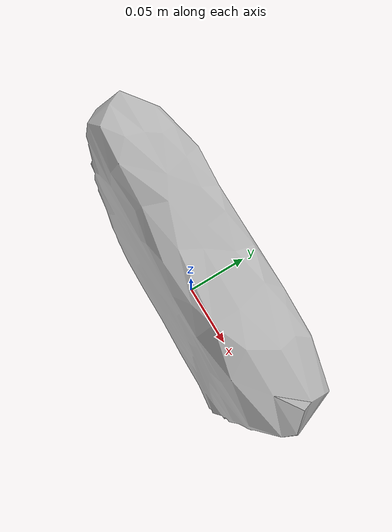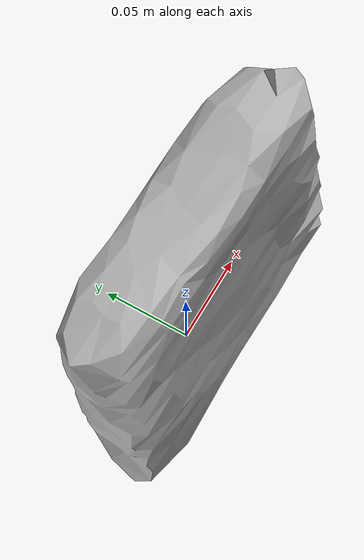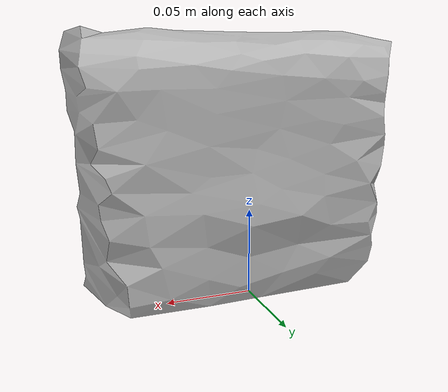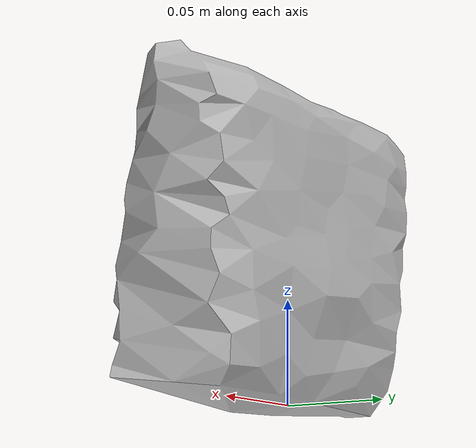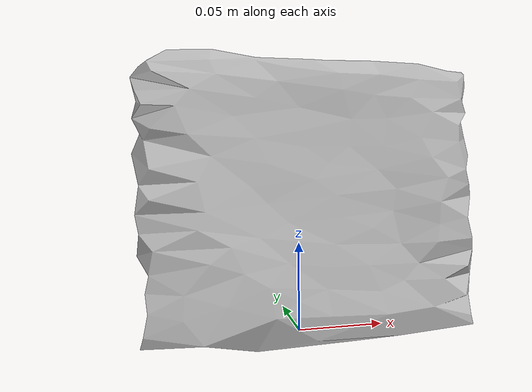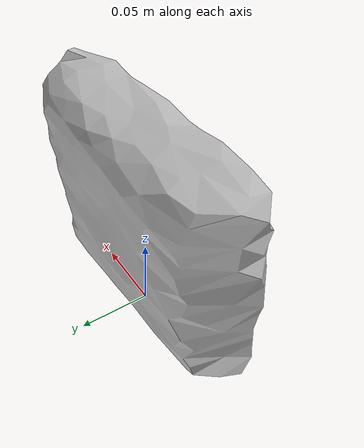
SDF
<?xml version="1.0" ?>
<sdf version="1.4">
  <model name="biscuits">
    <link name="biscuits_link">
      <inertial>
        <pose>0 0 0 0 0 0</pose>
        <mass>0.1</mass>
      </inertial>

      <visual name="biscuits_visual">
        <pose>0 0 0 0 0 0</pose>
        <material>
          <script>
            <uri>model://biscuits/materials/scripts</uri>
            <uri>model://biscuits/materials/textures</uri>
            <name>biscuits</name>
          </script>
        </material>
        <geometry>
          <mesh>
            <uri>model://biscuits/meshes/biscuits_aligned.dae</uri>
          </mesh>
        </geometry>
      </visual>

      <collision name="biscuits_collision">
        <pose>0.0 0.0 0.075 0 0 0</pose>
        <geometry>
          <box>
            <size>0.19 0.06 0.15</size>
          </box>
        </geometry>
      </collision>

    </link>
  </model>
</sdf>
